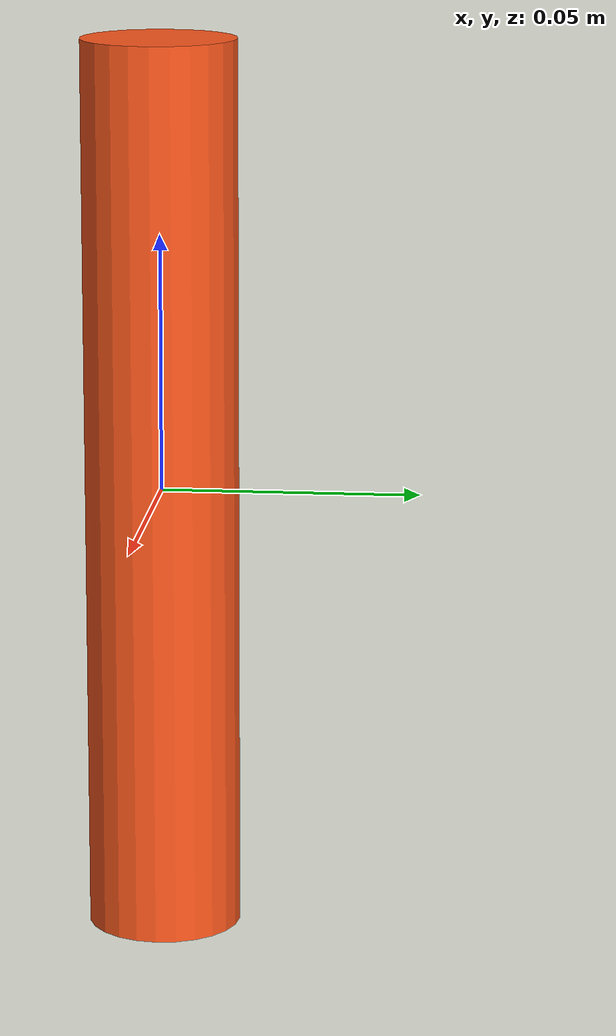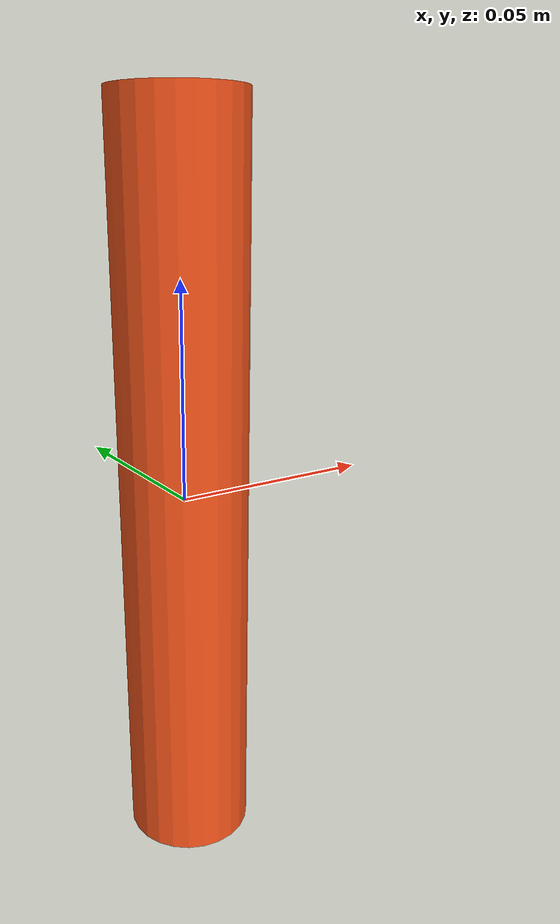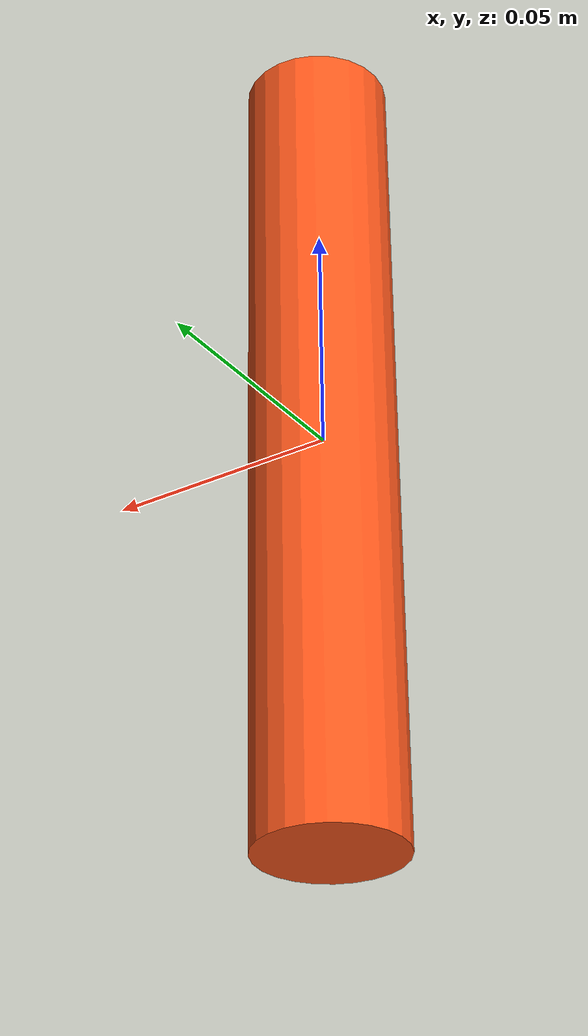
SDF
<?xml version='1.0' encoding='UTF-8'?>
<sdf version="1.7">

  <!-- world->ghost_body_y->ghost_body_z_sphere-->
  <model name="pusher">
    <!-- The model for a solid box of uniform density. -->
    <link name="pusher">
      <inertial>
        <mass>0.1</mass>

        <inertia>
          <ixx>0.0003064583333333333</ixx>
          <ixy>0</ixy>
          <ixz>0</ixz>
          <iyy>0.0003064583333333333</iyy>
          <iyz>0</iyz>
          <izz>1.125e-05</izz>
        </inertia>
      </inertial>
      <pose>0 0 0 0 0 0</pose>

      <visual name="visual">
        <geometry>
          <cylinder>
            <radius> 0.015 </radius>
            <length> 0.175 </length>
          </cylinder>
        </geometry>
        <material>
          <diffuse>0.9948493596776324 0.3444597351706782 0.11219743605355928 1.0</diffuse>
        </material>
      </visual>

      <collision name="collision">
        <geometry>
          <cylinder>
            <radius> 0.015 </radius>
            <length> 0.175 </length>
          </cylinder>
        </geometry>
        <drake:proximity_properties>
          <drake:compliant_hydroelastic/>
          <drake:hunt_crossley_dissipation>1.25</drake:hunt_crossley_dissipation>
          <drake:hydroelastic_modulus>1e5</drake:hydroelastic_modulus>
          <drake:mesh_resolution_hint>0.005</drake:mesh_resolution_hint>
          <drake:mu_dynamic>0.25</drake:mu_dynamic>
          <drake:mu_static>0.25</drake:mu_static>
        </drake:proximity_properties>
      </collision>
    </link>
  </model>

</sdf>
